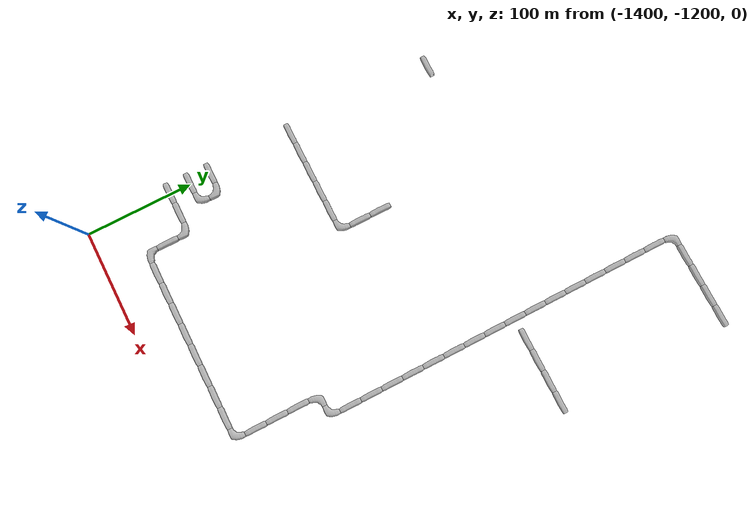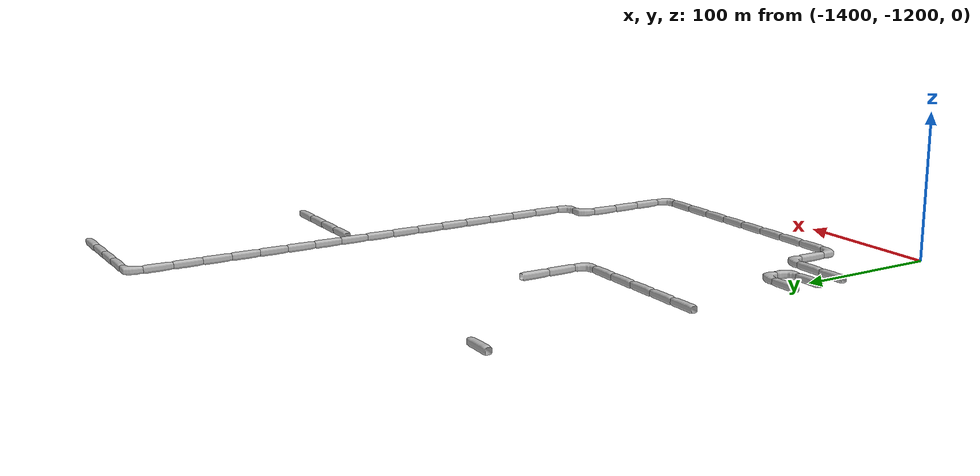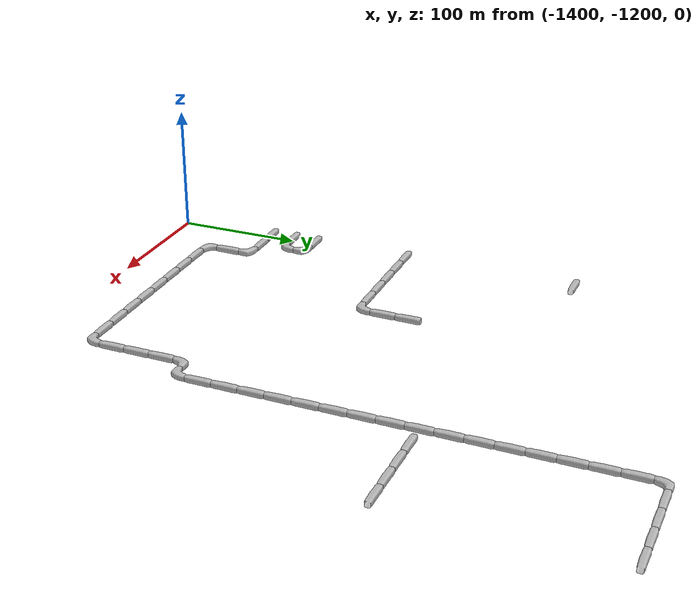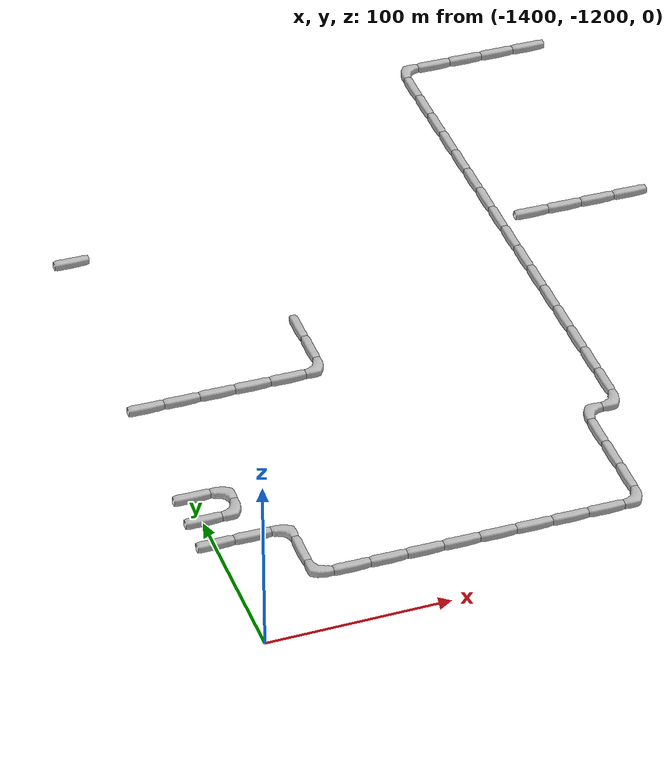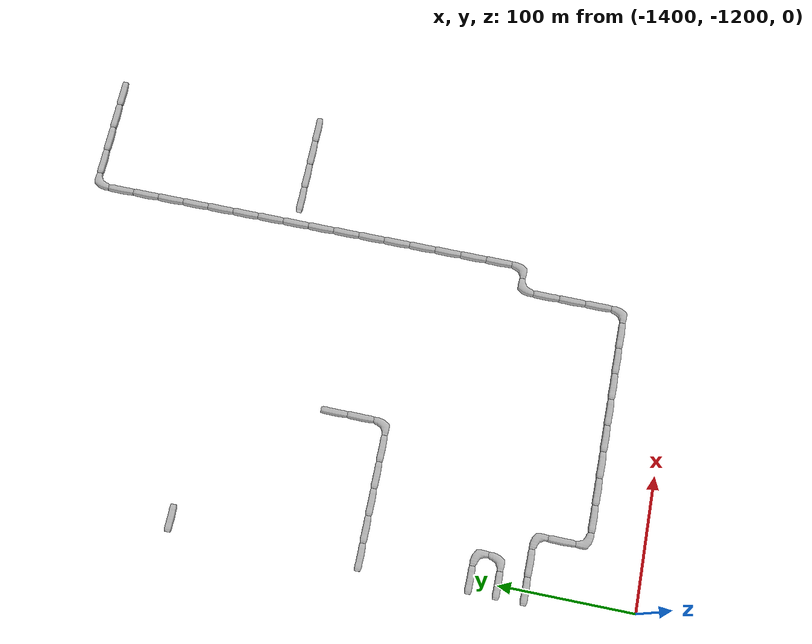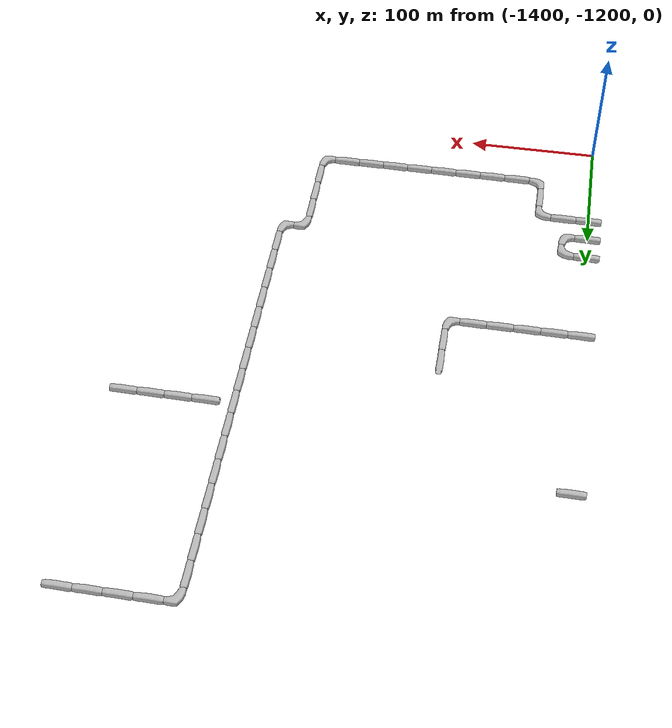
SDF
<sdf version="1.6">
 <world name="cave_32000_64">
  <include>
   <static>true</static>
   <name>cave_-54_-45</name>
   <pose>-1080 -900 0 0 0 1.5707963267948966</pose>
   <uri>model://cave_straight_20m</uri>
  </include>
  <include>
   <static>true</static>
   <name>cave_-55_-45</name>
   <pose>-1100 -900 0 0 0 1.5707963267948966</pose>
   <uri>model://cave_straight_20m</uri>
  </include>
  <include>
   <static>true</static>
   <name>cave_-56_-45</name>
   <pose>-1120 -900 0 0 0 1.5707963267948966</pose>
   <uri>model://cave_straight_20m</uri>
  </include>
  <include>
   <static>true</static>
   <name>cave_-57_-45</name>
   <pose>-1140 -900 0 0 0 1.5707963267948966</pose>
   <uri>model://cave_straight_20m</uri>
  </include>
  <include>
   <static>true</static>
   <name>cave_-54_-37</name>
   <pose>-1080 -740 0 0 0 1.5707963267948966</pose>
   <uri>model://cave_straight_20m</uri>
  </include>
  <include>
   <static>true</static>
   <name>cave_-55_-37</name>
   <pose>-1100 -740 0 0 0 1.5707963267948966</pose>
   <uri>model://cave_straight_20m</uri>
  </include>
  <include>
   <static>true</static>
   <name>cave_-56_-37</name>
   <pose>-1120 -740 0 0 0 1.5707963267948966</pose>
   <uri>model://cave_straight_20m</uri>
  </include>
  <include>
   <static>true</static>
   <name>cave_-57_-37</name>
   <pose>-1140 -740 0 0 0 1.5707963267948966</pose>
   <uri>model://cave_straight_20m</uri>
  </include>
  <include>
   <static>true</static>
   <name>cave_-58_-37</name>
   <pose>-1160 -740 0 0 0 -1.5707963267948966</pose>
   <uri>model://cave_L_20m</uri>
  </include>
  <include>
   <static>true</static>
   <name>cave_-58_-38</name>
   <pose>-1160 -760 0 0 0 0.0</pose>
   <uri>model://cave_straight_20m</uri>
  </include>
  <include>
   <static>true</static>
   <name>cave_-58_-39</name>
   <pose>-1160 -780 0 0 0 0.0</pose>
   <uri>model://cave_straight_20m</uri>
  </include>
  <include>
   <static>true</static>
   <name>cave_-58_-40</name>
   <pose>-1160 -800 0 0 0 0.0</pose>
   <uri>model://cave_straight_20m</uri>
  </include>
  <include>
   <static>true</static>
   <name>cave_-58_-41</name>
   <pose>-1160 -820 0 0 0 0.0</pose>
   <uri>model://cave_straight_20m</uri>
  </include>
  <include>
   <static>true</static>
   <name>cave_-58_-42</name>
   <pose>-1160 -840 0 0 0 0.0</pose>
   <uri>model://cave_straight_20m</uri>
  </include>
  <include>
   <static>true</static>
   <name>cave_-58_-43</name>
   <pose>-1160 -860 0 0 0 0.0</pose>
   <uri>model://cave_straight_20m</uri>
  </include>
  <include>
   <static>true</static>
   <name>cave_-58_-44</name>
   <pose>-1160 -880 0 0 0 0.0</pose>
   <uri>model://cave_straight_20m</uri>
  </include>
  <include>
   <static>true</static>
   <name>cave_-58_-45</name>
   <pose>-1160 -900 0 0 0 0.0</pose>
   <uri>model://cave_straight_20m</uri>
  </include>
  <include>
   <static>true</static>
   <name>cave_-58_-46</name>
   <pose>-1160 -920 0 0 0 0.0</pose>
   <uri>model://cave_straight_20m</uri>
  </include>
  <include>
   <static>true</static>
   <name>cave_-58_-47</name>
   <pose>-1160 -940 0 0 0 0.0</pose>
   <uri>model://cave_straight_20m</uri>
  </include>
  <include>
   <static>true</static>
   <name>cave_-58_-48</name>
   <pose>-1160 -960 0 0 0 0.0</pose>
   <uri>model://cave_straight_20m</uri>
  </include>
  <include>
   <static>true</static>
   <name>cave_-58_-49</name>
   <pose>-1160 -980 0 0 0 0.0</pose>
   <uri>model://cave_straight_20m</uri>
  </include>
  <include>
   <static>true</static>
   <name>cave_-58_-50</name>
   <pose>-1160 -1000 0 0 0 0.0</pose>
   <uri>model://cave_straight_20m</uri>
  </include>
  <include>
   <static>true</static>
   <name>cave_-58_-51</name>
   <pose>-1160 -1020 0 0 0 0.0</pose>
   <uri>model://cave_straight_20m</uri>
  </include>
  <include>
   <static>true</static>
   <name>cave_-58_-52</name>
   <pose>-1160 -1040 0 0 0 0.0</pose>
   <uri>model://cave_straight_20m</uri>
  </include>
  <include>
   <static>true</static>
   <name>cave_-58_-53</name>
   <pose>-1160 -1060 0 0 0 0.0</pose>
   <uri>model://cave_straight_20m</uri>
  </include>
  <include>
   <static>true</static>
   <name>cave_-58_-54</name>
   <pose>-1160 -1080 0 0 0 1.5707963267948966</pose>
   <uri>model://cave_L_20m</uri>
  </include>
  <include>
   <static>true</static>
   <name>cave_-59_-54</name>
   <pose>-1180 -1080 0 0 0 -1.5707963267948966</pose>
   <uri>model://cave_L_20m</uri>
  </include>
  <include>
   <static>true</static>
   <name>cave_-59_-55</name>
   <pose>-1180 -1100 0 0 0 0.0</pose>
   <uri>model://cave_straight_20m</uri>
  </include>
  <include>
   <static>true</static>
   <name>cave_-59_-56</name>
   <pose>-1180 -1120 0 0 0 0.0</pose>
   <uri>model://cave_straight_20m</uri>
  </include>
  <include>
   <static>true</static>
   <name>cave_-59_-57</name>
   <pose>-1180 -1140 0 0 0 0.0</pose>
   <uri>model://cave_straight_20m</uri>
  </include>
  <include>
   <static>true</static>
   <name>cave_-59_-58</name>
   <pose>-1180 -1160 0 0 0 1.5707963267948966</pose>
   <uri>model://cave_L_20m</uri>
  </include>
  <include>
   <static>true</static>
   <name>cave_-60_-58</name>
   <pose>-1200 -1160 0 0 0 1.5707963267948966</pose>
   <uri>model://cave_straight_20m</uri>
  </include>
  <include>
   <static>true</static>
   <name>cave_-61_-58</name>
   <pose>-1220 -1160 0 0 0 1.5707963267948966</pose>
   <uri>model://cave_straight_20m</uri>
  </include>
  <include>
   <static>true</static>
   <name>cave_-62_-58</name>
   <pose>-1240 -1160 0 0 0 1.5707963267948966</pose>
   <uri>model://cave_straight_20m</uri>
  </include>
  <include>
   <static>true</static>
   <name>cave_-63_-58</name>
   <pose>-1260 -1160 0 0 0 1.5707963267948966</pose>
   <uri>model://cave_straight_20m</uri>
  </include>
  <include>
   <static>true</static>
   <name>cave_-64_-58</name>
   <pose>-1280 -1160 0 0 0 1.5707963267948966</pose>
   <uri>model://cave_straight_20m</uri>
  </include>
  <include>
   <static>true</static>
   <name>cave_-65_-58</name>
   <pose>-1300 -1160 0 0 0 1.5707963267948966</pose>
   <uri>model://cave_straight_20m</uri>
  </include>
  <include>
   <static>true</static>
   <name>cave_-66_-58</name>
   <pose>-1320 -1160 0 0 0 1.5707963267948966</pose>
   <uri>model://cave_straight_20m</uri>
  </include>
  <include>
   <static>true</static>
   <name>cave_-67_-58</name>
   <pose>-1340 -1160 0 0 0 1.5707963267948966</pose>
   <uri>model://cave_straight_20m</uri>
  </include>
  <include>
   <static>true</static>
   <name>cave_-68_-58</name>
   <pose>-1360 -1160 0 0 0 0.0</pose>
   <uri>model://cave_L_20m</uri>
  </include>
  <include>
   <static>true</static>
   <name>cave_-68_-57</name>
   <pose>-1360 -1140 0 0 0 0.0</pose>
   <uri>model://cave_straight_20m</uri>
  </include>
  <include>
   <static>true</static>
   <name>cave_-68_-56</name>
   <pose>-1360 -1120 0 0 0 3.141592653589793</pose>
   <uri>model://cave_L_20m</uri>
  </include>
  <include>
   <static>true</static>
   <name>cave_-69_-56</name>
   <pose>-1380 -1120 0 0 0 1.5707963267948966</pose>
   <uri>model://cave_straight_20m</uri>
  </include>
  <include>
   <static>true</static>
   <name>cave_-70_-56</name>
   <pose>-1400 -1120 0 0 0 1.5707963267948966</pose>
   <uri>model://cave_straight_20m</uri>
  </include>
  <include>
   <static>true</static>
   <name>cave_-70_-55</name>
   <pose>-1400 -1100 0 0 0 1.5707963267948966</pose>
   <uri>model://cave_straight_20m</uri>
  </include>
  <include>
   <static>true</static>
   <name>cave_-69_-55</name>
   <pose>-1380 -1100 0 0 0 1.5707963267948966</pose>
   <uri>model://cave_L_20m</uri>
  </include>
  <include>
   <static>true</static>
   <name>cave_-69_-54</name>
   <pose>-1380 -1080 0 0 0 3.141592653589793</pose>
   <uri>model://cave_L_20m</uri>
  </include>
  <include>
   <static>true</static>
   <name>cave_-70_-54</name>
   <pose>-1400 -1080 0 0 0 1.5707963267948966</pose>
   <uri>model://cave_straight_20m</uri>
  </include>
  <include>
   <static>true</static>
   <name>cave_-70_-50</name>
   <pose>-1400 -1000 0 0 0 1.5707963267948966</pose>
   <uri>model://cave_straight_20m</uri>
  </include>
  <include>
   <static>true</static>
   <name>cave_-69_-50</name>
   <pose>-1380 -1000 0 0 0 1.5707963267948966</pose>
   <uri>model://cave_straight_20m</uri>
  </include>
  <include>
   <static>true</static>
   <name>cave_-68_-50</name>
   <pose>-1360 -1000 0 0 0 1.5707963267948966</pose>
   <uri>model://cave_straight_20m</uri>
  </include>
  <include>
   <static>true</static>
   <name>cave_-67_-50</name>
   <pose>-1340 -1000 0 0 0 1.5707963267948966</pose>
   <uri>model://cave_straight_20m</uri>
  </include>
  <include>
   <static>true</static>
   <name>cave_-66_-50</name>
   <pose>-1320 -1000 0 0 0 1.5707963267948966</pose>
   <uri>model://cave_straight_20m</uri>
  </include>
  <include>
   <static>true</static>
   <name>cave_-65_-50</name>
   <pose>-1300 -1000 0 0 0 1.5707963267948966</pose>
   <uri>model://cave_L_20m</uri>
  </include>
  <include>
   <static>true</static>
   <name>cave_-65_-49</name>
   <pose>-1300 -980 0 0 0 0.0</pose>
   <uri>model://cave_straight_20m</uri>
  </include>
  <include>
   <static>true</static>
   <name>cave_-65_-48</name>
   <pose>-1300 -960 0 0 0 0.0</pose>
   <uri>model://cave_straight_20m</uri>
  </include>
  <include>
   <static>true</static>
   <name>cave_-70_-43</name>
   <pose>-1400 -860 0 0 0 1.5707963267948966</pose>
   <uri>model://cave_straight_20m</uri>
  </include>
 </world>
</sdf>
